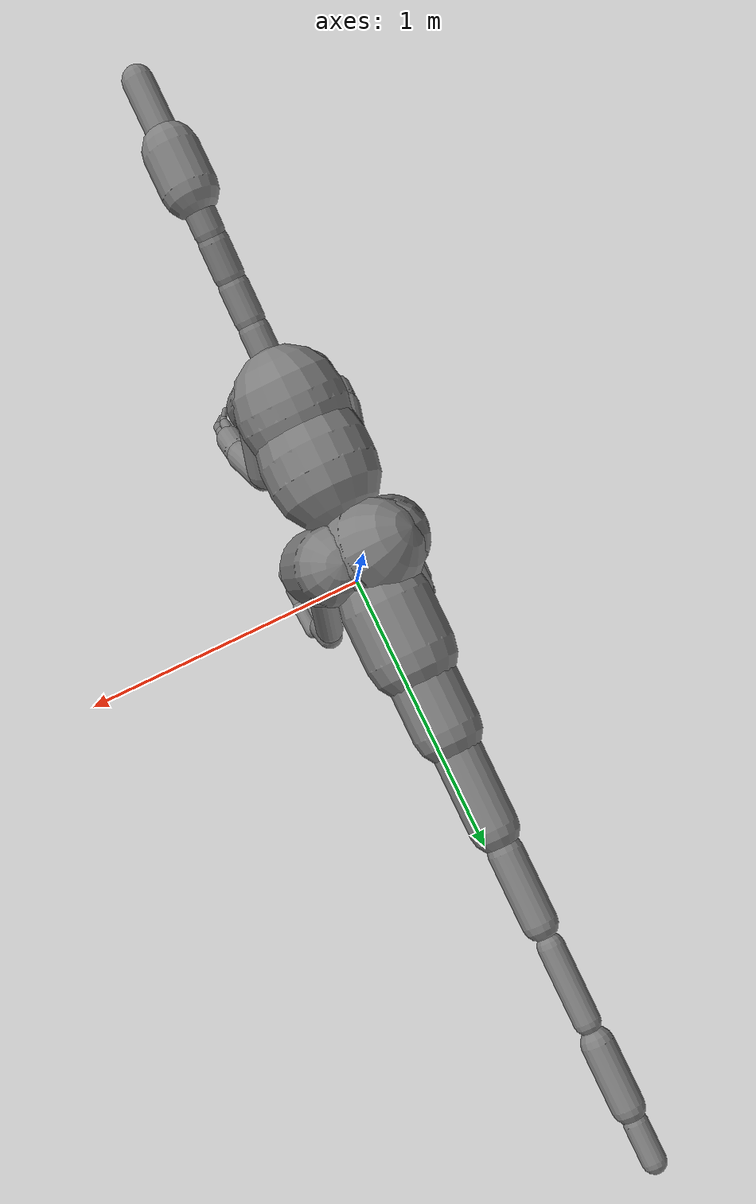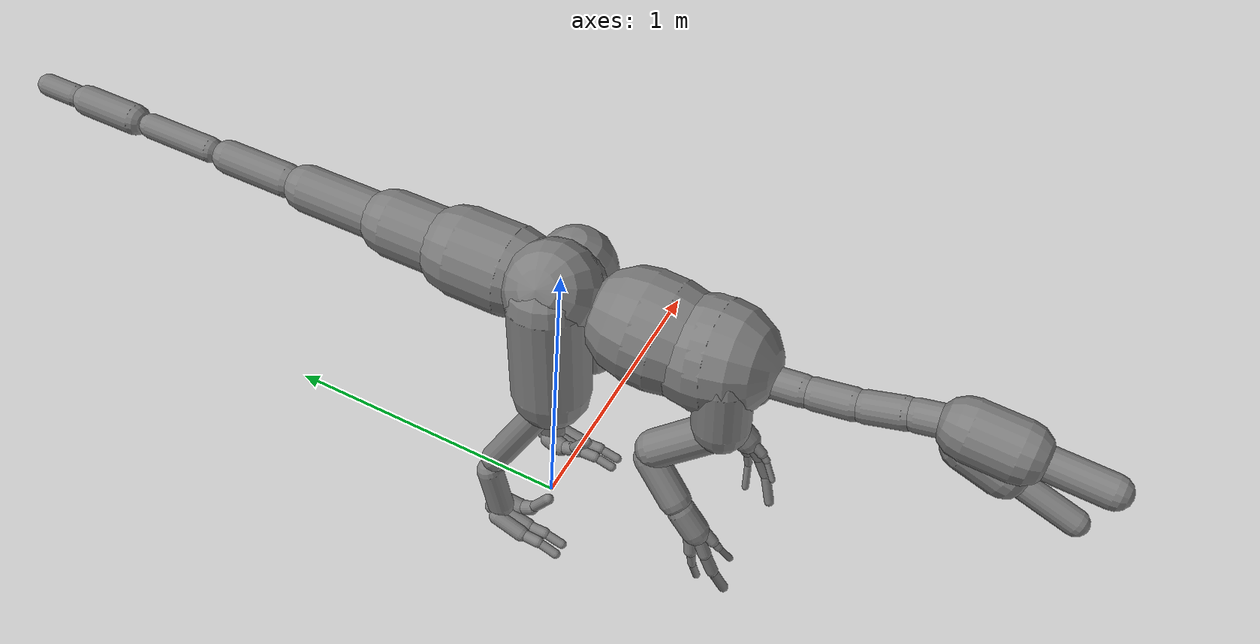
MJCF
<mujoco model="utahraptor">
  <compiler angle="radian" />
  <option timestep="0.016667" />
  <default>
    <joint limited="true" armature="0.451832" frictionloss="1.21104" />
    <geom type="capsule" density="1606.2" contype="1" conaffinity="1" friction="1.0 0.05 0.05" />
    <motor ctrllimited="true" />
  </default>
  <contact>
    <exclude body1="Neck3" body2="Jaw" />
    <exclude body1="LeftUpLeg" body2="Hips" />
    <exclude body1="LeftUpLeg" body2="Spine" />
    <exclude body1="LeftUpLeg" body2="Spine1" />
    <exclude body1="LeftUpLeg" body2="Tail" />
    <exclude body1="RightUpLeg" body2="Hips" />
    <exclude body1="RightUpLeg" body2="Spine" />
    <exclude body1="RightUpLeg" body2="Spine1" />
    <exclude body1="RightUpLeg" body2="Tail" />
    <exclude body1="LeftUpLeg" body2="RightUpLeg" />
    <exclude body1="LeftShoulder" body2="Spine" />
    <exclude body1="LeftShoulder" body2="Spine1" />
    <exclude body1="LeftShoulder" body2="Neck" />
    <exclude body1="LeftShoulder" body2="Hips" />
    <exclude body1="LeftToeBase" body2="LeftFootIndex1" />
    <exclude body1="LeftToeBase" body2="LeftFootMiddle1" />
    <exclude body1="LeftToeBase" body2="LeftFootRing1" />
    <exclude body1="LeftFootIndex1" body2="LeftFootMiddle1" />
    <exclude body1="LeftFootMiddle1" body2="LeftFootRing1" />
    <exclude body1="LeftFootIndex1" body2="LeftFootRing1" />
    <exclude body1="LeftFootIndex2" body2="LeftFootMiddle1" />
    <exclude body1="LeftFoot" body2="LeftFootIndex2" />
    <exclude body1="LeftHandMiddle2" body2="LeftHandRing2" />
    <exclude body1="LeftHandMiddle2" body2="LeftHandRing3" />
    <exclude body1="LeftHandMiddle3" body2="LeftHandRing3" />
    <exclude body1="RightShoulder" body2="Spine" />
    <exclude body1="RightShoulder" body2="Spine1" />
    <exclude body1="RightShoulder" body2="Neck" />
    <exclude body1="RightShoulder" body2="Hips" />
    <exclude body1="RightToeBase" body2="RightFootIndex1" />
    <exclude body1="RightToeBase" body2="RightFootMiddle1" />
    <exclude body1="RightToeBase" body2="RightFootRing1" />
    <exclude body1="RightFootIndex1" body2="RightFootMiddle1" />
    <exclude body1="RightFootMiddle1" body2="RightFootRing1" />
    <exclude body1="RightFootIndex1" body2="RightFootRing1" />
    <exclude body1="RightFootIndex2" body2="RightFootMiddle1" />
    <exclude body1="RightFoot" body2="RightFootIndex2" />
    <exclude body1="RightHandMiddle2" body2="RightHandRing2" />
    <exclude body1="RightHandMiddle2" body2="RightHandRing3" />
    <exclude body1="RightHandMiddle3" body2="RightHandRing3" />
    <exclude body1="LeftShoulder" body2="RightShoulder" />
  </contact>
  <worldbody>
    <body name="Hips" pos="0 0.00230387 0.953781">
      <freejoint name="root" />
      <geom name="g_Hips" fromto="-0.00961858 -0.00021923 0.00837076 -0.0400778 -0.000913486 0.0348788" size="0.149238" density="1401.8" />
      <body name="Spine" pos="-7.358e-33 -0.238799 -0.00573093">
        <joint name="Spine_x" type="hinge" axis="1 0 0" pos="0 0 0" range="-1.5107 0.6132" />
        <joint name="Spine_y" type="hinge" axis="0 1 0" pos="0 0 0" range="-0.6056 0.6056" />
        <joint name="Spine_z" type="hinge" axis="0 0 1" pos="0 0 0" range="-0.6850 0.6850" />
        <geom name="g_Spine" fromto="-9.07834e-10 -0.0242997 -0.00114617 -3.78263e-09 -0.101247 -0.00477581" size="0.167892" density="980.8" />
        <body name="Spine1" pos="-7.56524e-09 -0.202497 -0.00955142">
          <joint name="Spine1_x" type="hinge" axis="1 0 0" pos="0 0 0" range="-1.0496 0.7756" />
          <joint name="Spine1_y" type="hinge" axis="0 1 0" pos="0 0 0" range="-0.8858 0.8858" />
          <joint name="Spine1_z" type="hinge" axis="0 0 1" pos="0 0 0" range="-0.7553 0.7553" />
          <geom name="g_Spine1" fromto="-4.10572e-09 -0.014719 0.00199569 -1.71069e-08 -0.0613293 0.00831573" size="0.167892" density="984.0" />
          <body name="Neck" pos="-6.42787e-09 -0.171929 -0.0133721">
            <joint name="Neck_x" type="hinge" axis="1 0 0" pos="0 0 0" range="-1.4389 0.8324" />
            <joint name="Neck_y" type="hinge" axis="0 1 0" pos="0 0 0" range="-0.6063 0.8743" />
            <joint name="Neck_z" type="hinge" axis="0 0 1" pos="0 0 0" range="-0.8974 0.8974" />
            <geom name="g_Neck" fromto="-6.27416e-10 -0.0168707 0.00247604 -4.60101e-09 -0.123718 0.0181574" size="0.0466369" density="980.8" />
            <body name="Neck1" pos="-5.22836e-09 -0.140588 0.020634">
              <joint name="Neck1_x" type="hinge" axis="1 0 0" pos="0 0 0" range="-1.2515 0.7095" />
              <joint name="Neck1_y" type="hinge" axis="0 1 0" pos="0 0 0" range="-0.7888 0.7888" />
              <joint name="Neck1_z" type="hinge" axis="0 0 1" pos="0 0 0" range="-0.6976 0.7484" />
              <geom name="g_Neck1" fromto="-6.07548e-10 -0.0163576 0.00329648 -4.45532e-09 -0.119956 0.0241747" size="0.0466369" density="984.0" />
              <body name="Neck2" pos="-5.0629e-09 -0.136314 0.027471">
                <joint name="Neck2_x" type="hinge" axis="1 0 0" pos="0 0 0" range="-0.9083 1.7995" />
                <joint name="Neck2_y" type="hinge" axis="0 1 0" pos="0 0 0" range="-0.6279 0.5475" />
                <joint name="Neck2_z" type="hinge" axis="0 0 1" pos="0 0 0" range="-0.9775 0.9775" />
                <geom name="g_Neck2" fromto="-5.82867e-10 -0.0157452 0.00537854 -4.27437e-09 -0.115465 0.0394418" size="0.0466369" density="984.0" />
                <body name="Neck3" pos="-4.85714e-09 -0.131211 0.0448199">
                  <joint name="Neck3_x" type="hinge" axis="1 0 0" pos="0 0 0" range="-0.7080 1.5979" />
                  <joint name="Neck3_y" type="hinge" axis="0 1 0" pos="0 0 0" range="-0.7589 1.6128" />
                  <joint name="Neck3_z" type="hinge" axis="0 0 1" pos="0 0 0" range="-0.8767 0.8654" />
                  <geom name="g_Neck3" fromto="-5.51547e-05 -0.0129018 0.00342968 -0.000404473 -0.0946132 0.0251523" size="0.0466369" density="984.0" />
                  <body name="Head" pos="-0.000459616 -0.107515 0.028581">
                    <joint name="Head_x" type="hinge" axis="1 0 0" pos="0 0 0" range="-1.4312 1.7949" />
                    <joint name="Head_y" type="hinge" axis="0 1 0" pos="0 0 0" range="-1.2113 0.9948" />
                    <joint name="Head_z" type="hinge" axis="0 0 1" pos="0 0 0" range="-1.6584 1.6584" />
                    <geom name="g_Head" fromto="-0.000215648 -0.0344098 -0.00127646 -0.00102433 -0.163447 -0.0060632" size="0.0861849" density="980.8" />
                    <geom name="g_Head_muzzle" fromto="-0.00134781 -0.215061 -0.00797789 -0.00247996 -0.395712 -0.0146794" size="0.0475696" density="980.8" />
                    <body name="Jaw" pos="-0.000411635 -0.0126386 -0.0510151">
                      <joint name="Jaw_x" type="hinge" axis="1 0 0" pos="0 0 0" range="-0.5242 1.3148" />
                      <joint name="Jaw_y" type="hinge" axis="0 1 0" pos="0 0 0" range="-0.6722 0.6722" />
                      <joint name="Jaw_z" type="hinge" axis="0 0 1" pos="0 0 0" range="-0.6218 0.6218" />
                      <geom name="g_Jaw" fromto="-0.000242154 -0.0286567 -0.0105759 -0.00115023 -0.13612 -0.0502355" size="0.068463" density="980.8" />
                      <geom name="g_Jaw_tip" fromto="-0.00151346 -0.179104 -0.0660994 -0.0028453 -0.336717 -0.124267" size="0.0369365" density="980.8" />
                    </body>
                  </body>
                </body>
              </body>
            </body>
          </body>
          <body name="LeftShoulder" pos="0.0748802 -0.0980233 0.0316328">
            <joint name="LeftShoulder_x" type="hinge" axis="1 0 0" pos="0 0 0" range="-1.0879 1.3179" />
            <joint name="LeftShoulder_y" type="hinge" axis="0 1 0" pos="0 0 0" range="-0.9148 0.7142" />
            <joint name="LeftShoulder_z" type="hinge" axis="0 0 1" pos="0 0 0" range="-0.6609 0.5530" />
            <geom name="g_LeftShoulder" fromto="0.00229267 -0.00259469 -0.0242662 0.0168136 -0.0190279 -0.177959" size="0.0839464" density="1401.8" />
            <body name="LeftArm" pos="0.0191062 -0.0216208 -0.202218">
              <joint name="LeftArm_x" type="hinge" axis="1 0 0" pos="0 0 0" range="-2.1802 2.3641" />
              <joint name="LeftArm_y" type="hinge" axis="0 1 0" pos="0 0 0" range="-1.3899 1.6724" />
              <joint name="LeftArm_z" type="hinge" axis="0 0 1" pos="0 0 0" range="-2.2335 1.9332" />
              <geom name="g_LeftArm" fromto="0.00597829 0.0228054 -0.0192368 0.0438405 0.16724 -0.141069" size="0.0578298" density="1401.8" />
              <body name="LeftForeArm" pos="0.0498194 0.190036 -0.160306">
                <joint name="LeftForeArm_x" type="hinge" axis="1 0 0" pos="0 0 0" range="-1.2770 1.8986" />
                <joint name="LeftForeArm_y" type="hinge" axis="0 1 0" pos="0 0 0" range="-1.2931 1.1387" />
                <joint name="LeftForeArm_z" type="hinge" axis="0 0 1" pos="0 0 0" range="-2.5874 1.4681" />
                <geom name="g_LeftForeArm" fromto="0.00501105 -0.016188 -0.0153844 0.036748 -0.118713 -0.112821" size="0.0485024" density="1401.8" />
                <body name="LeftHand" pos="0.0417587 -0.1349 -0.128203">
                  <joint name="LeftHand_x" type="hinge" axis="1 0 0" pos="0 0 0" range="-3.1067 2.0532" />
                  <joint name="LeftHand_y" type="hinge" axis="0 1 0" pos="0 0 0" range="-1.6520 1.3623" />
                  <joint name="LeftHand_z" type="hinge" axis="0 0 1" pos="0 0 0" range="-3.1067 2.6298" />
                  <geom name="g_LeftHand" fromto="0.000866868 -0.00849016 -0.00916657 0.00635698 -0.0622603 -0.0672206" size="0.042906" density="1401.8" />
                  <body name="LeftHandMiddle1" pos="0.010012 -0.0736247 -0.0789787">
                    <joint name="LeftHandMiddle1_x" type="hinge" axis="1 0 0" pos="0 0 0" range="-1.0460 1.4460" />
                    <joint name="LeftHandMiddle1_y" type="hinge" axis="0 1 0" pos="0 0 0" range="-1.2524 1.1571" />
                    <joint name="LeftHandMiddle1_z" type="hinge" axis="0 0 1" pos="0 0 0" range="-2.0143 1.1108" />
                    <geom name="g_LeftHandMiddle1" fromto="0 0 0 0.00875747 -0.031825 -0.060087" size="0.0199793" density="1310.9" />
                    <body name="LeftHandMiddle2" pos="0.00875747 -0.031825 -0.060087">
                      <joint name="LeftHandMiddle2_x" type="hinge" axis="1 0 0" pos="0 0 0" range="-0.2083 0.6642" />
                      <joint name="LeftHandMiddle2_y" type="hinge" axis="0 1 0" pos="0 0 0" range="-0.2988 0.9734" />
                      <joint name="LeftHandMiddle2_z" type="hinge" axis="0 0 1" pos="0 0 0" range="-0.8469 0.2330" />
                      <geom name="g_LeftHandMiddle2" fromto="0 0 0 -0.000313288 -0.0311217 -0.0649297" size="0.0185801" density="1310.9" />
                      <body name="LeftHandMiddle3" pos="-0.000313288 -0.0311217 -0.0649297">
                        <joint name="LeftHandMiddle3_x" type="hinge" axis="1 0 0" pos="0 0 0" range="-0.2106 1.5778" />
                        <joint name="LeftHandMiddle3_y" type="hinge" axis="0 1 0" pos="0 0 0" range="-0.4369 1.1254" />
                        <joint name="LeftHandMiddle3_z" type="hinge" axis="0 0 1" pos="0 0 0" range="-1.8404 0.2958" />
                        <geom name="g_LeftHandMiddle3" fromto="-0.00361746 -0.0055003 -0.0138285 -0.0242752 -0.0369102 -0.0927968" size="0.0153155" density="1310.9" />
                      </body>
                    </body>
                  </body>
                  <body name="LeftHandRing1" pos="0.0139138 -0.051114 -0.0874758">
                    <joint name="LeftHandRing1_x" type="hinge" axis="1 0 0" pos="0 0 0" range="-1.0420 0.9748" />
                    <joint name="LeftHandRing1_y" type="hinge" axis="0 1 0" pos="0 0 0" range="-0.8982 1.2482" />
                    <joint name="LeftHandRing1_z" type="hinge" axis="0 0 1" pos="0 0 0" range="-1.4353 1.0217" />
                    <geom name="g_LeftHandRing1" fromto="0 0 0 0.0124065 -0.0128955 -0.0550782" size="0.020371" density="1310.9" />
                    <body name="LeftHandRing2" pos="0.0124065 -0.0128955 -0.0550782">
                      <joint name="LeftHandRing2_x" type="hinge" axis="1 0 0" pos="0 0 0" range="-0.2026 0.6074" />
                      <joint name="LeftHandRing2_y" type="hinge" axis="0 1 0" pos="0 0 0" range="-0.3775 1.2035" />
                      <joint name="LeftHandRing2_z" type="hinge" axis="0 0 1" pos="0 0 0" range="-0.6580 0.2258" />
                      <geom name="g_LeftHandRing2" fromto="0 0 0 0.000789059 -0.0114152 -0.0571619" size="0.012536" density="1310.9" />
                      <body name="LeftHandRing3" pos="0.000789059 -0.0114152 -0.0571619">
                        <joint name="LeftHandRing3_x" type="hinge" axis="1 0 0" pos="0 0 0" range="-0.1917 2.2210" />
                        <joint name="LeftHandRing3_y" type="hinge" axis="0 1 0" pos="0 0 0" range="-0.3447 1.4237" />
                        <joint name="LeftHandRing3_z" type="hinge" axis="0 0 1" pos="0 0 0" range="-2.2882 0.2091" />
                        <geom name="g_LeftHandRing3" fromto="-0.00311512 -0.00151111 -0.0106439 -0.0250992 -0.0121754 -0.0857602" size="0.0111929" density="1310.9" />
                      </body>
                    </body>
                  </body>
                  <body name="LeftHandIndex1" pos="-0.00225405 -0.0875132 -0.0627098">
                    <joint name="LeftHandIndex1_x" type="hinge" axis="1 0 0" pos="0 0 0" range="-1.0547 0.9737" />
                    <joint name="LeftHandIndex1_y" type="hinge" axis="0 1 0" pos="0 0 0" range="-0.5403 1.1295" />
                    <joint name="LeftHandIndex1_z" type="hinge" axis="0 0 1" pos="0 0 0" range="-1.0749 0.9371" />
                    <geom name="g_LeftHandIndex1" fromto="0 0 0 0.00100889 -0.0305136 -0.0288962" size="0.0169012" density="1310.9" />
                    <body name="LeftHandIndex2" pos="0.00100889 -0.0305136 -0.0288962">
                      <joint name="LeftHandIndex2_x" type="hinge" axis="1 0 0" pos="0 0 0" range="-0.2408 0.5086" />
                      <joint name="LeftHandIndex2_y" type="hinge" axis="0 1 0" pos="0 0 0" range="-0.2930 0.4743" />
                      <joint name="LeftHandIndex2_z" type="hinge" axis="0 0 1" pos="0 0 0" range="-0.6024 0.2600" />
                      <geom name="g_LeftHandIndex2" fromto="0 0 0 -0.00256746 -0.0181039 -0.0197069" size="0.0121816" density="1310.9" />
                      <body name="LeftHandIndex3" pos="-0.00256746 -0.0181039 -0.0197069">
                        <joint name="LeftHandIndex3_x" type="hinge" axis="1 0 0" pos="0 0 0" range="-0.2702 1.6488" />
                        <joint name="LeftHandIndex3_y" type="hinge" axis="0 1 0" pos="0 0 0" range="-0.3272 0.5907" />
                        <joint name="LeftHandIndex3_z" type="hinge" axis="0 0 1" pos="0 0 0" range="-1.9297 0.3181" />
                        <geom name="g_LeftHandIndex3" fromto="-0.00267814 -0.00509958 -0.00785151 -0.0184275 -0.0350886 -0.054024" size="0.00973778" density="1310.9" />
                      </body>
                    </body>
                  </body>
                </body>
              </body>
            </body>
          </body>
          <body name="RightShoulder" pos="-0.0748802 -0.0980233 0.0316328">
            <joint name="RightShoulder_x" type="hinge" axis="1 0 0" pos="0 0 0" range="-1.0879 1.3179" />
            <joint name="RightShoulder_y" type="hinge" axis="0 1 0" pos="0 0 0" range="-0.7142 1.0588" />
            <joint name="RightShoulder_z" type="hinge" axis="0 0 1" pos="0 0 0" range="-0.5530 0.6609" />
            <geom name="g_RightShoulder" fromto="-0.00229267 -0.0025945 -0.0242662 -0.0168136 -0.0190259 -0.177959" size="0.0839464" density="1401.8" />
            <body name="RightArm" pos="-0.0191062 -0.0216208 -0.202218">
              <joint name="RightArm_x" type="hinge" axis="1 0 0" pos="0 0 0" range="-2.1802 2.3641" />
              <joint name="RightArm_y" type="hinge" axis="0 1 0" pos="0 0 0" range="-1.6724 1.3899" />
              <joint name="RightArm_z" type="hinge" axis="0 0 1" pos="0 0 0" range="-1.9332 2.2335" />
              <geom name="g_RightArm" fromto="-0.00597829 0.0228054 -0.0192368 -0.0438405 0.167237 -0.141069" size="0.0578298" density="1401.8" />
              <body name="RightForeArm" pos="-0.0498175 0.190036 -0.160306">
                <joint name="RightForeArm_x" type="hinge" axis="1 0 0" pos="0 0 0" range="-1.2770 1.8986" />
                <joint name="RightForeArm_y" type="hinge" axis="0 1 0" pos="0 0 0" range="-1.1387 1.2931" />
                <joint name="RightForeArm_z" type="hinge" axis="0 0 1" pos="0 0 0" range="-1.4115 2.5874" />
                <geom name="g_RightForeArm" fromto="-0.00501105 -0.016188 -0.0153844 -0.036748 -0.118711 -0.112818" size="0.0485024" density="1401.8" />
                <body name="RightHand" pos="-0.0417587 -0.1349 -0.128203">
                  <joint name="RightHand_x" type="hinge" axis="1 0 0" pos="0 0 0" range="-3.1067 2.0532" />
                  <joint name="RightHand_y" type="hinge" axis="0 1 0" pos="0 0 0" range="-1.3623 1.6520" />
                  <joint name="RightHand_z" type="hinge" axis="0 0 1" pos="0 0 0" range="-2.6298 3.1067" />
                  <geom name="g_RightHand" fromto="-0.000866905 -0.00849016 -0.00916657 -0.00635717 -0.0622603 -0.0672224" size="0.042906" density="1401.8" />
                  <body name="RightHandMiddle1" pos="-0.010012 -0.0736247 -0.0789787">
                    <joint name="RightHandMiddle1_x" type="hinge" axis="1 0 0" pos="0 0 0" range="-1.0460 1.4460" />
                    <joint name="RightHandMiddle1_y" type="hinge" axis="0 1 0" pos="0 0 0" range="-1.1571 1.2524" />
                    <joint name="RightHandMiddle1_z" type="hinge" axis="0 0 1" pos="0 0 0" range="-1.1108 2.0143" />
                    <geom name="g_RightHandMiddle1" fromto="0 0 0 -0.00875784 -0.031825 -0.0600851" size="0.0199793" density="1310.9" />
                    <body name="RightHandMiddle2" pos="-0.00875784 -0.031825 -0.0600851">
                      <joint name="RightHandMiddle2_x" type="hinge" axis="1 0 0" pos="0 0 0" range="-0.2083 0.6642" />
                      <joint name="RightHandMiddle2_y" type="hinge" axis="0 1 0" pos="0 0 0" range="-0.9734 0.2988" />
                      <joint name="RightHandMiddle2_z" type="hinge" axis="0 0 1" pos="0 0 0" range="-0.2330 0.8469" />
                      <geom name="g_RightHandMiddle2" fromto="0 0 0 0.000313288 -0.0311217 -0.0649297" size="0.0185801" density="1310.9" />
                      <body name="RightHandMiddle3" pos="0.000313288 -0.0311217 -0.0649297">
                        <joint name="RightHandMiddle3_x" type="hinge" axis="1 0 0" pos="0 0 0" range="-0.2106 1.5778" />
                        <joint name="RightHandMiddle3_y" type="hinge" axis="0 1 0" pos="0 0 0" range="-1.1254 0.4369" />
                        <joint name="RightHandMiddle3_z" type="hinge" axis="0 0 1" pos="0 0 0" range="-0.2958 1.8404" />
                        <geom name="g_RightHandMiddle3" fromto="0.00361749 -0.00550039 -0.0138284 0.0242756 -0.036911 -0.0927975" size="0.0153155" density="1310.9" />
                      </body>
                    </body>
                  </body>
                  <body name="RightHandRing1" pos="-0.0139144 -0.051114 -0.0874758">
                    <joint name="RightHandRing1_x" type="hinge" axis="1 0 0" pos="0 0 0" range="-1.0420 0.9748" />
                    <joint name="RightHandRing1_y" type="hinge" axis="0 1 0" pos="0 0 0" range="-1.2482 0.8982" />
                    <joint name="RightHandRing1_z" type="hinge" axis="0 0 1" pos="0 0 0" range="-1.0217 1.4353" />
                    <geom name="g_RightHandRing1" fromto="0 0 0 -0.012405 -0.012896 -0.0550782" size="0.0200725" density="1310.9" />
                    <body name="RightHandRing2" pos="-0.012405 -0.012896 -0.0550782">
                      <joint name="RightHandRing2_x" type="hinge" axis="1 0 0" pos="0 0 0" range="-0.2026 0.6074" />
                      <joint name="RightHandRing2_y" type="hinge" axis="0 1 0" pos="0 0 0" range="-1.2035 0.3760" />
                      <joint name="RightHandRing2_z" type="hinge" axis="0 0 1" pos="0 0 0" range="-0.2258 0.6580" />
                      <geom name="g_RightHandRing2" fromto="0 0 0 -0.000789283 -0.011415 -0.0571619" size="0.012536" density="1310.9" />
                      <body name="RightHandRing3" pos="-0.000789283 -0.011415 -0.0571619">
                        <joint name="RightHandRing3_x" type="hinge" axis="1 0 0" pos="0 0 0" range="-0.1917 2.2210" />
                        <joint name="RightHandRing3_y" type="hinge" axis="0 1 0" pos="0 0 0" range="-1.4237 0.3447" />
                        <joint name="RightHandRing3_z" type="hinge" axis="0 0 1" pos="0 0 0" range="-0.2091 2.2882" />
                        <geom name="g_RightHandRing3" fromto="0.00311509 -0.00151111 -0.0106439 0.0250989 -0.0121753 -0.0857598" size="0.0111929" density="1310.9" />
                      </body>
                    </body>
                  </body>
                  <body name="RightHandIndex1" pos="0.00225387 -0.0875132 -0.0627098">
                    <joint name="RightHandIndex1_x" type="hinge" axis="1 0 0" pos="0 0 0" range="-1.0547 0.9737" />
                    <joint name="RightHandIndex1_y" type="hinge" axis="0 1 0" pos="0 0 0" range="-1.1295 0.5403" />
                    <joint name="RightHandIndex1_z" type="hinge" axis="0 0 1" pos="0 0 0" range="-0.9371 1.0749" />
                    <geom name="g_RightHandIndex1" fromto="0 0 0 -0.00100887 -0.0305136 -0.0288962" size="0.0169012" density="1310.9" />
                    <body name="RightHandIndex2" pos="-0.00100887 -0.0305136 -0.0288962">
                      <joint name="RightHandIndex2_x" type="hinge" axis="1 0 0" pos="0 0 0" range="-0.2408 0.5086" />
                      <joint name="RightHandIndex2_y" type="hinge" axis="0 1 0" pos="0 0 0" range="-0.4743 0.2930" />
                      <joint name="RightHandIndex2_z" type="hinge" axis="0 0 1" pos="0 0 0" range="-0.2600 0.6024" />
                      <geom name="g_RightHandIndex2" fromto="0 0 0 0.00256764 -0.0181046 -0.019705" size="0.0121816" density="1310.9" />
                      <body name="RightHandIndex3" pos="0.00256764 -0.0181046 -0.019705">
                        <joint name="RightHandIndex3_x" type="hinge" axis="1 0 0" pos="0 0 0" range="-0.2702 1.6488" />
                        <joint name="RightHandIndex3_y" type="hinge" axis="0 1 0" pos="0 0 0" range="-0.5907 0.3272" />
                        <joint name="RightHandIndex3_z" type="hinge" axis="0 0 1" pos="0 0 0" range="-0.3181 1.9297" />
                        <geom name="g_RightHandIndex3" fromto="0.00267814 -0.00509952 -0.00785156 0.0184276 -0.0350886 -0.0540247" size="0.00973778" density="1310.9" />
                      </body>
                    </body>
                  </body>
                </body>
              </body>
            </body>
          </body>
        </body>
      </body>
      <body name="Tail" pos="0 0.123155 -0.00153118">
        <joint name="Tail_x" type="hinge" axis="1 0 0" pos="0 0 0" range="-0.6016 1.2474" />
        <joint name="Tail_y" type="hinge" axis="0 1 0" pos="0 0 0" range="-1.1216 1.1216" />
        <joint name="Tail_z" type="hinge" axis="0 0 1" pos="0 0 0" range="-0.9570 0.9570" />
        <geom name="g_Tail" fromto="-8.46086e-10 0.0261894 -0.000110227 -6.20457e-09 0.19205 -0.00080833" size="0.138045" density="1401.8" />
        <body name="Tail1" pos="-7.05075e-09 0.218242 -0.00091856">
          <joint name="Tail1_x" type="hinge" axis="1 0 0" pos="0 0 0" range="-0.4449 0.8159" />
          <joint name="Tail1_y" type="hinge" axis="0 1 0" pos="0 0 0" range="-0.8186 0.8186" />
          <joint name="Tail1_z" type="hinge" axis="0 0 1" pos="0 0 0" range="-0.6087 0.6087" />
          <geom name="g_Tail1" fromto="-9.43949e-10 0.029217 -0.000123097 -6.92222e-09 0.214269 -0.000902722" size="0.104467" density="1401.8" />
          <body name="Tail2" pos="-7.86615e-09 0.243482 -0.00102582">
            <joint name="Tail2_x" type="hinge" axis="1 0 0" pos="0 0 0" range="-0.4246 0.4704" />
            <joint name="Tail2_y" type="hinge" axis="0 1 0" pos="0 0 0" range="-0.4631 0.4631" />
            <joint name="Tail2_z" type="hinge" axis="0 0 1" pos="0 0 0" range="-0.4904 0.4904" />
            <geom name="g_Tail2" fromto="-1.25101e-09 0.0387217 -0.000162973 -9.17403e-09 0.283963 -0.00119513" size="0.074619" density="1401.8" />
            <body name="Tail3" pos="-1.0425e-08 0.32269 -0.00135811">
              <joint name="Tail3_x" type="hinge" axis="1 0 0" pos="0 0 0" range="-0.4323 0.4590" />
              <joint name="Tail3_y" type="hinge" axis="0 1 0" pos="0 0 0" range="-0.8782 0.8782" />
              <joint name="Tail3_z" type="hinge" axis="0 0 1" pos="0 0 0" range="-0.4828 0.4828" />
              <geom name="g_Tail3" fromto="-1.14746e-09 0.0355168 -0.000149568 -8.4146e-09 0.260458 -0.00109683" size="0.0540988" density="1401.8" />
              <body name="Tail4" pos="-9.56206e-09 0.295976 -0.0012464">
                <joint name="Tail4_x" type="hinge" axis="1 0 0" pos="0 0 0" range="-0.4298 0.4572" />
                <joint name="Tail4_y" type="hinge" axis="0 1 0" pos="0 0 0" range="-0.8782 0.8782" />
                <joint name="Tail4_z" type="hinge" axis="0 0 1" pos="0 0 0" range="-0.4828 0.4828" />
                <geom name="g_Tail4" fromto="-1.20391e-09 0.0372648 -0.000156934 -8.82855e-09 0.273274 -0.00115083" size="0.0410404" density="1401.8" />
                <body name="Tail5" pos="-1.00325e-08 0.310527 -0.00130777">
                  <joint name="Tail5_x" type="hinge" axis="1 0 0" pos="0 0 0" range="-0.2446 0.1745" />
                  <joint name="Tail5_y" type="hinge" axis="0 1 0" pos="0 0 0" range="-0.1745 0.1745" />
                  <joint name="Tail5_z" type="hinge" axis="0 0 1" pos="0 0 0" range="-0.1745 0.1745" />
                  <geom name="g_Tail5" fromto="-1.0059e-09 0.0311348 -0.000131085 -7.37665e-09 0.228334 -0.000961298" size="0.0503678" density="1401.8" />
                  <body name="Tail6" pos="-8.38251e-09 0.259469 -0.00109239">
                    <joint name="Tail6_x" type="hinge" axis="1 0 0" pos="0 0 0" range="-1.0469 1.0288" />
                    <joint name="Tail6_y" type="hinge" axis="0 1 0" pos="0 0 0" range="-1.2793 1.2793" />
                    <joint name="Tail6_z" type="hinge" axis="0 0 1" pos="0 0 0" range="-1.2112 0.8699" />
                    <geom name="g_Tail6" fromto="-6.03537e-10 0.0186808 -7.86521e-05 -4.42603e-09 0.136997 -0.000576768" size="0.0373095" density="1401.8" />
                  </body>
                </body>
              </body>
            </body>
          </body>
        </body>
      </body>
      <body name="LeftUpLeg" pos="0.0801558 -0.00182697 0.0697576">
        <joint name="LeftUpLeg_x" type="hinge" axis="1 0 0" pos="0 0 0" range="-1.7984 1.1466" />
        <joint name="LeftUpLeg_y" type="hinge" axis="0 1 0" pos="0 0 0" range="-0.9443 0.6051" />
        <joint name="LeftUpLeg_z" type="hinge" axis="0 0 1" pos="0 0 0" range="-1.0967 0.8135" />
        <geom name="g_LeftUpLeg" fromto="0.00558188 -0.00631948 -0.0478065 0.0409341 -0.0463421 -0.350578" size="0.121256" density="1401.8" />
        <body name="LeftLeg" pos="0.0465156 -0.0526624 -0.398391">
          <joint name="LeftLeg_x" type="hinge" axis="1 0 0" pos="0 0 0" range="-0.7311 2.4105" />
          <joint name="LeftLeg_y" type="hinge" axis="0 1 0" pos="0 0 0" range="-0.6966 1.3946" />
          <joint name="LeftLeg_z" type="hinge" axis="0 0 1" pos="0 0 0" range="-1.4227 0.8179" />
          <geom name="g_LeftLeg" fromto="0.00503715 0.0235479 -0.0470082 0.0369402 0.172687 -0.34474" size="0.0447714" density="1401.8" />
          <body name="LeftFoot" pos="0.041977 0.196229 -0.391732">
            <joint name="LeftFoot_x" type="hinge" axis="1 0 0" pos="0 0 0" range="-2.0747 0.9271" />
            <joint name="LeftFoot_y" type="hinge" axis="0 1 0" pos="0 0 0" range="-1.6183 1.4881" />
            <joint name="LeftFoot_z" type="hinge" axis="0 0 1" pos="0 0 0" range="-1.8977 0.8570" />
            <geom name="g_LeftFoot" fromto="0.00115246 -0.00703994 -0.0229285 0.00845135 -0.0516252 -0.168141" size="0.042906" density="1401.8" />
            <body name="LeftToeBase" pos="0.00858921 -0.0667187 -0.198076">
              <joint name="LeftToeBase_x" type="hinge" axis="1 0 0" pos="0 0 0" range="-2.7852 2.5440" />
              <joint name="LeftToeBase_y" type="hinge" axis="0 1 0" pos="0 0 0" range="-1.6339 1.7271" />
              <joint name="LeftToeBase_z" type="hinge" axis="0 0 1" pos="0 0 0" range="-1.8521 3.1067" />
              <geom name="g_LeftToeBase" fromto="0 0.0150617 0 0 0.0447714 0" size="0.0261166" density="1401.8" />
            </body>
            <body name="LeftFootIndex1" pos="-0.0204101 -0.0547349 -0.181805">
              <joint name="LeftFootIndex1_x" type="hinge" axis="1 0 0" pos="0 0 0" range="-1.5186 2.6109" />
              <joint name="LeftFootIndex1_y" type="hinge" axis="0 1 0" pos="0 0 0" range="-1.2260 1.2952" />
              <joint name="LeftFootIndex1_z" type="hinge" axis="0 0 1" pos="0 0 0" range="-1.7670 2.1674" />
              <geom name="g_LeftFootIndex1" fromto="0 0 0 -0.00521139 -0.0480882 -0.00851273" size="0.0312094" density="1401.8" />
              <body name="LeftFootIndex2" pos="-0.00521139 -0.0480882 -0.00851273">
                <joint name="LeftFootIndex2_x" type="hinge" axis="1 0 0" pos="0 0 0" range="-0.0873 1.5936" />
                <joint name="LeftFootIndex2_y" type="hinge" axis="0 1 0" pos="0 0 0" range="-0.2224 0.2088" />
                <joint name="LeftFootIndex2_z" type="hinge" axis="0 0 1" pos="0 0 0" range="-0.1410 0.2880" />
                <geom name="g_LeftFootIndex2" fromto="0 0 0 -0.00473346 -0.0414304 0.0205501" size="0.0235797" density="1401.8" />
                <body name="LeftFootIndex3" pos="-0.00473346 -0.0414304 0.0205501">
                  <joint name="LeftFootIndex3_x" type="hinge" axis="1 0 0" pos="0 0 0" range="-0.8183 1.6514" />
                  <joint name="LeftFootIndex3_y" type="hinge" axis="0 1 0" pos="0 0 0" range="-0.2768 0.2332" />
                  <joint name="LeftFootIndex3_z" type="hinge" axis="0 0 1" pos="0 0 0" range="-0.2061 0.2897" />
                  <geom name="g_LeftFootIndex3" fromto="-0.00116532 -0.0102274 0.0144261 -0.0063262 -0.0555214 0.0783149" size="0.017722" density="1401.8" />
                </body>
              </body>
            </body>
            <body name="LeftFootMiddle1" pos="0.00911901 -0.057729 -0.1922">
              <joint name="LeftFootMiddle1_x" type="hinge" axis="1 0 0" pos="0 0 0" range="-1.5603 3.1067" />
              <joint name="LeftFootMiddle1_y" type="hinge" axis="0 1 0" pos="0 0 0" range="-1.4467 1.6240" />
              <joint name="LeftFootMiddle1_z" type="hinge" axis="0 0 1" pos="0 0 0" range="-2.8446 1.2173" />
              <geom name="g_LeftFootMiddle1" fromto="0 0 0 -6.52861e-09 -0.0934584 -0.024212" size="0.0249414" density="1401.8" />
              <body name="LeftFootMiddle2" pos="-6.52861e-09 -0.0934584 -0.024212">
                <joint name="LeftFootMiddle2_x" type="hinge" axis="1 0 0" pos="0 0 0" range="-0.0873 1.6122" />
                <joint name="LeftFootMiddle2_y" type="hinge" axis="0 1 0" pos="0 0 0" range="-0.1774 0.1950" />
                <joint name="LeftFootMiddle2_z" type="hinge" axis="0 0 1" pos="0 0 0" range="-0.1691 0.2039" />
                <geom name="g_LeftFootMiddle2" fromto="0 0 0 -2.72397e-09 -0.0639205 0.00338976" size="0.0187107" density="1401.8" />
                <body name="LeftFootMiddle3" pos="-2.72397e-09 -0.0639205 0.00338976">
                  <joint name="LeftFootMiddle3_x" type="hinge" axis="1 0 0" pos="0 0 0" range="-0.5742 1.5203" />
                  <joint name="LeftFootMiddle3_y" type="hinge" axis="0 1 0" pos="0 0 0" range="-0.1803 0.1967" />
                  <joint name="LeftFootMiddle3_z" type="hinge" axis="0 0 1" pos="0 0 0" range="-0.1841 0.2039" />
                  <geom name="g_LeftFootMiddle3" fromto="0.000117173 -0.014632 -0.00337692 0.000509677 -0.0636462 -0.014689" size="0.015017" density="1401.8" />
                </body>
              </body>
            </body>
            <body name="LeftFootRing1" pos="0.0411169 -0.0554792 -0.1922">
              <joint name="LeftFootRing1_x" type="hinge" axis="1 0 0" pos="0 0 0" range="-1.6908 3.1067" />
              <joint name="LeftFootRing1_y" type="hinge" axis="0 1 0" pos="0 0 0" range="-1.2814 1.6088" />
              <joint name="LeftFootRing1_z" type="hinge" axis="0 0 1" pos="0 0 0" range="-2.5722 1.5796" />
              <geom name="g_LeftFootRing1" fromto="0 0 0 0.00469485 -0.0933353 -0.0242344" size="0.0259674" density="1401.8" />
              <body name="LeftFootRing2" pos="0.00469485 -0.0933353 -0.0242344">
                <joint name="LeftFootRing2_x" type="hinge" axis="1 0 0" pos="0 0 0" range="-0.0873 1.5876" />
                <joint name="LeftFootRing2_y" type="hinge" axis="0 1 0" pos="0 0 0" range="-0.1809 0.2757" />
                <joint name="LeftFootRing2_z" type="hinge" axis="0 0 1" pos="0 0 0" range="-0.1904 0.2708" />
                <geom name="g_LeftFootRing2" fromto="0 0 0 0.00302244 -0.0638497 0.00337296" size="0.0191398" density="1401.8" />
                <body name="LeftFootRing3" pos="0.00302244 -0.0638497 0.00337296">
                  <joint name="LeftFootRing3_x" type="hinge" axis="1 0 0" pos="0 0 0" range="-0.6197 1.4533" />
                  <joint name="LeftFootRing3_y" type="hinge" axis="0 1 0" pos="0 0 0" range="-0.1943 0.2410" />
                  <joint name="LeftFootRing3_z" type="hinge" axis="0 0 1" pos="0 0 0" range="-0.2271 0.1871" />
                  <geom name="g_LeftFootRing3" fromto="0.000577415 -0.0145128 -0.00366581 0.00261713 -0.065779 -0.0166152" size="0.0149798" density="1401.8" />
                </body>
              </body>
            </body>
          </body>
        </body>
      </body>
      <body name="RightUpLeg" pos="-0.0801558 -0.00182695 0.0697558">
        <joint name="RightUpLeg_x" type="hinge" axis="1 0 0" pos="0 0 0" range="-1.7984 1.2450" />
        <joint name="RightUpLeg_y" type="hinge" axis="0 1 0" pos="0 0 0" range="-0.6051 0.9443" />
        <joint name="RightUpLeg_z" type="hinge" axis="0 0 1" pos="0 0 0" range="-0.8135 1.0967" />
        <geom name="g_RightUpLeg" fromto="-0.00558188 -0.00631948 -0.0478065 -0.0409341 -0.0463421 -0.350578" size="0.121256" density="1401.8" />
        <body name="RightLeg" pos="-0.0465156 -0.0526624 -0.398391">
          <joint name="RightLeg_x" type="hinge" axis="1 0 0" pos="0 0 0" range="-0.7311 2.4105" />
          <joint name="RightLeg_y" type="hinge" axis="0 1 0" pos="0 0 0" range="-1.3946 0.6966" />
          <joint name="RightLeg_z" type="hinge" axis="0 0 1" pos="0 0 0" range="-0.8179 1.4227" />
          <geom name="g_RightLeg" fromto="-0.00503715 0.0235479 -0.0470082 -0.0369402 0.172687 -0.34474" size="0.0447714" density="1401.8" />
          <body name="RightFoot" pos="-0.041977 0.196229 -0.391732">
            <joint name="RightFoot_x" type="hinge" axis="1 0 0" pos="0 0 0" range="-2.0747 0.9271" />
            <joint name="RightFoot_y" type="hinge" axis="0 1 0" pos="0 0 0" range="-1.4881 1.6183" />
            <joint name="RightFoot_z" type="hinge" axis="0 0 1" pos="0 0 0" range="-0.8570 1.8977" />
            <geom name="g_RightFoot" fromto="-0.00115246 -0.00703994 -0.0229285 -0.00845135 -0.0516252 -0.168141" size="0.042906" density="1401.8" />
            <body name="RightToeBase" pos="-0.00858921 -0.0667187 -0.198076">
              <joint name="RightToeBase_x" type="hinge" axis="1 0 0" pos="0 0 0" range="-2.7852 2.5440" />
              <joint name="RightToeBase_y" type="hinge" axis="0 1 0" pos="0 0 0" range="-1.7271 1.6339" />
              <joint name="RightToeBase_z" type="hinge" axis="0 0 1" pos="0 0 0" range="-3.1067 1.8521" />
              <geom name="g_RightToeBase" fromto="0 0.0150617 0 0 0.0447714 0" size="0.0261166" density="1401.8" />
            </body>
            <body name="RightFootIndex1" pos="0.0204101 -0.0547349 -0.181805">
              <joint name="RightFootIndex1_x" type="hinge" axis="1 0 0" pos="0 0 0" range="-1.5186 2.6109" />
              <joint name="RightFootIndex1_y" type="hinge" axis="0 1 0" pos="0 0 0" range="-1.2952 1.2260" />
              <joint name="RightFootIndex1_z" type="hinge" axis="0 0 1" pos="0 0 0" range="-2.1674 1.7670" />
              <geom name="g_RightFootIndex1" fromto="0 0 0 0.00521139 -0.0480882 -0.00851273" size="0.0294558" density="1401.8" />
              <body name="RightFootIndex2" pos="0.00521139 -0.0480882 -0.00851273">
                <joint name="RightFootIndex2_x" type="hinge" axis="1 0 0" pos="0 0 0" range="-0.0873 1.5936" />
                <joint name="RightFootIndex2_y" type="hinge" axis="0 1 0" pos="0 0 0" range="-0.1698 0.2224" />
                <joint name="RightFootIndex2_z" type="hinge" axis="0 0 1" pos="0 0 0" range="-0.2880 0.1193" />
                <geom name="g_RightFootIndex2" fromto="0 0 0 0.00473365 -0.0414304 0.0205519" size="0.0235797" density="1401.8" />
                <body name="RightFootIndex3" pos="0.00473365 -0.0414304 0.0205519">
                  <joint name="RightFootIndex3_x" type="hinge" axis="1 0 0" pos="0 0 0" range="-0.8183 1.6514" />
                  <joint name="RightFootIndex3_y" type="hinge" axis="0 1 0" pos="0 0 0" range="-0.2332 0.2768" />
                  <joint name="RightFootIndex3_z" type="hinge" axis="0 0 1" pos="0 0 0" range="-0.2897 0.2061" />
                  <geom name="g_RightFootIndex3" fromto="0.00116531 -0.0102274 0.0144261 0.00632616 -0.0555214 0.0783149" size="0.017722" density="1401.8" />
                </body>
              </body>
            </body>
            <body name="RightFootMiddle1" pos="-0.00911901 -0.057729 -0.1922">
              <joint name="RightFootMiddle1_x" type="hinge" axis="1 0 0" pos="0 0 0" range="-1.5603 3.1067" />
              <joint name="RightFootMiddle1_y" type="hinge" axis="0 1 0" pos="0 0 0" range="-1.6240 1.4467" />
              <joint name="RightFootMiddle1_z" type="hinge" axis="0 0 1" pos="0 0 0" range="-1.2173 2.8446" />
              <geom name="g_RightFootMiddle1" fromto="0 0 0 -2.59133e-10 -0.0934584 -0.024212" size="0.0249414" density="1401.8" />
              <body name="RightFootMiddle2" pos="-2.59133e-10 -0.0934584 -0.024212">
                <joint name="RightFootMiddle2_x" type="hinge" axis="1 0 0" pos="0 0 0" range="-0.0873 1.6122" />
                <joint name="RightFootMiddle2_y" type="hinge" axis="0 1 0" pos="0 0 0" range="-0.1950 0.1774" />
                <joint name="RightFootMiddle2_z" type="hinge" axis="0 0 1" pos="0 0 0" range="-0.2032 0.1694" />
                <geom name="g_RightFootMiddle2" fromto="0 0 0 -2.14884e-09 -0.0639205 0.00338976" size="0.0187107" density="1401.8" />
                <body name="RightFootMiddle3" pos="-2.14884e-09 -0.0639205 0.00338976">
                  <joint name="RightFootMiddle3_x" type="hinge" axis="1 0 0" pos="0 0 0" range="-0.5742 1.5203" />
                  <joint name="RightFootMiddle3_y" type="hinge" axis="0 1 0" pos="0 0 0" range="-0.1967 0.1803" />
                  <joint name="RightFootMiddle3_z" type="hinge" axis="0 0 1" pos="0 0 0" range="-0.2039 0.1841" />
                  <geom name="g_RightFootMiddle3" fromto="-0.000117177 -0.014632 -0.0033769 -0.0005097 -0.0636462 -0.0146888" size="0.015017" density="1401.8" />
                </body>
              </body>
            </body>
            <body name="RightFootRing1" pos="-0.0411169 -0.0554792 -0.1922">
              <joint name="RightFootRing1_x" type="hinge" axis="1 0 0" pos="0 0 0" range="-1.6908 3.1067" />
              <joint name="RightFootRing1_y" type="hinge" axis="0 1 0" pos="0 0 0" range="-1.6088 1.2814" />
              <joint name="RightFootRing1_z" type="hinge" axis="0 0 1" pos="0 0 0" range="-1.5796 2.5722" />
              <geom name="g_RightFootRing1" fromto="0 0 0 -0.0046954 -0.0933353 -0.0242344" size="0.0260981" density="1401.8" />
              <body name="RightFootRing2" pos="-0.0046954 -0.0933353 -0.0242344">
                <joint name="RightFootRing2_x" type="hinge" axis="1 0 0" pos="0 0 0" range="-0.0873 1.6407" />
                <joint name="RightFootRing2_y" type="hinge" axis="0 1 0" pos="0 0 0" range="-0.3756 0.1783" />
                <joint name="RightFootRing2_z" type="hinge" axis="0 0 1" pos="0 0 0" range="-0.2708 0.2143" />
                <geom name="g_RightFootRing2" fromto="0 0 0 -0.00302207 -0.0638497 0.00337296" size="0.0191398" density="1401.8" />
                <body name="RightFootRing3" pos="-0.00302207 -0.0638497 0.00337296">
                  <joint name="RightFootRing3_x" type="hinge" axis="1 0 0" pos="0 0 0" range="-0.6197 1.4533" />
                  <joint name="RightFootRing3_y" type="hinge" axis="0 1 0" pos="0 0 0" range="-0.3649 0.1936" />
                  <joint name="RightFootRing3_z" type="hinge" axis="0 0 1" pos="0 0 0" range="-0.1871 0.2111" />
                  <geom name="g_RightFootRing3" fromto="-0.000580999 -0.0146032 -0.00368863 -0.00261347 -0.065689 -0.0165923" size="0.015073" density="1401.8" />
                </body>
              </body>
            </body>
          </body>
        </body>
      </body>
    </body>
  </worldbody>
  <actuator>
    <motor name="m_Spine_x" joint="Spine_x" ctrlrange="-1090 1090" />
    <motor name="m_Spine_y" joint="Spine_y" ctrlrange="-1090 1090" />
    <motor name="m_Spine_z" joint="Spine_z" ctrlrange="-1090 1090" />
    <motor name="m_Tail_x" joint="Tail_x" ctrlrange="-1211 1211" />
    <motor name="m_Tail_y" joint="Tail_y" ctrlrange="-1211 1211" />
    <motor name="m_Tail_z" joint="Tail_z" ctrlrange="-1211 1211" />
    <motor name="m_LeftUpLeg_x" joint="LeftUpLeg_x" ctrlrange="-1453 1453" />
    <motor name="m_LeftUpLeg_y" joint="LeftUpLeg_y" ctrlrange="-1453 1453" />
    <motor name="m_LeftUpLeg_z" joint="LeftUpLeg_z" ctrlrange="-1453 1453" />
    <motor name="m_RightUpLeg_x" joint="RightUpLeg_x" ctrlrange="-1453 1453" />
    <motor name="m_RightUpLeg_y" joint="RightUpLeg_y" ctrlrange="-1453 1453" />
    <motor name="m_RightUpLeg_z" joint="RightUpLeg_z" ctrlrange="-1453 1453" />
    <motor name="m_Spine1_x" joint="Spine1_x" ctrlrange="-1090 1090" />
    <motor name="m_Spine1_y" joint="Spine1_y" ctrlrange="-1090 1090" />
    <motor name="m_Spine1_z" joint="Spine1_z" ctrlrange="-1090 1090" />
    <motor name="m_Tail1_x" joint="Tail1_x" ctrlrange="-968.8 968.8" />
    <motor name="m_Tail1_y" joint="Tail1_y" ctrlrange="-968.8 968.8" />
    <motor name="m_Tail1_z" joint="Tail1_z" ctrlrange="-968.8 968.8" />
    <motor name="m_LeftLeg_x" joint="LeftLeg_x" ctrlrange="-1211 1211" />
    <motor name="m_LeftLeg_y" joint="LeftLeg_y" ctrlrange="-1211 1211" />
    <motor name="m_LeftLeg_z" joint="LeftLeg_z" ctrlrange="-1211 1211" />
    <motor name="m_RightLeg_x" joint="RightLeg_x" ctrlrange="-1211 1211" />
    <motor name="m_RightLeg_y" joint="RightLeg_y" ctrlrange="-1211 1211" />
    <motor name="m_RightLeg_z" joint="RightLeg_z" ctrlrange="-1211 1211" />
    <motor name="m_Neck_x" joint="Neck_x" ctrlrange="-423.9 423.9" />
    <motor name="m_Neck_y" joint="Neck_y" ctrlrange="-423.9 423.9" />
    <motor name="m_Neck_z" joint="Neck_z" ctrlrange="-423.9 423.9" />
    <motor name="m_LeftShoulder_x" joint="LeftShoulder_x" ctrlrange="-363.3 363.3" />
    <motor name="m_LeftShoulder_y" joint="LeftShoulder_y" ctrlrange="-363.3 363.3" />
    <motor name="m_LeftShoulder_z" joint="LeftShoulder_z" ctrlrange="-363.3 363.3" />
    <motor name="m_RightShoulder_x" joint="RightShoulder_x" ctrlrange="-363.3 363.3" />
    <motor name="m_RightShoulder_y" joint="RightShoulder_y" ctrlrange="-363.3 363.3" />
    <motor name="m_RightShoulder_z" joint="RightShoulder_z" ctrlrange="-363.3 363.3" />
    <motor name="m_Tail2_x" joint="Tail2_x" ctrlrange="-666.1 666.1" />
    <motor name="m_Tail2_y" joint="Tail2_y" ctrlrange="-666.1 666.1" />
    <motor name="m_Tail2_z" joint="Tail2_z" ctrlrange="-666.1 666.1" />
    <motor name="m_LeftFoot_x" joint="LeftFoot_x" ctrlrange="-726.6 726.6" />
    <motor name="m_LeftFoot_y" joint="LeftFoot_y" ctrlrange="-726.6 726.6" />
    <motor name="m_LeftFoot_z" joint="LeftFoot_z" ctrlrange="-726.6 726.6" />
    <motor name="m_RightFoot_x" joint="RightFoot_x" ctrlrange="-726.6 726.6" />
    <motor name="m_RightFoot_y" joint="RightFoot_y" ctrlrange="-726.6 726.6" />
    <motor name="m_RightFoot_z" joint="RightFoot_z" ctrlrange="-726.6 726.6" />
    <motor name="m_Neck1_x" joint="Neck1_x" ctrlrange="-423.9 423.9" />
    <motor name="m_Neck1_y" joint="Neck1_y" ctrlrange="-423.9 423.9" />
    <motor name="m_Neck1_z" joint="Neck1_z" ctrlrange="-423.9 423.9" />
    <motor name="m_LeftArm_x" joint="LeftArm_x" ctrlrange="-302.8 302.8" />
    <motor name="m_LeftArm_y" joint="LeftArm_y" ctrlrange="-302.8 302.8" />
    <motor name="m_LeftArm_z" joint="LeftArm_z" ctrlrange="-302.8 302.8" />
    <motor name="m_RightArm_x" joint="RightArm_x" ctrlrange="-302.8 302.8" />
    <motor name="m_RightArm_y" joint="RightArm_y" ctrlrange="-302.8 302.8" />
    <motor name="m_RightArm_z" joint="RightArm_z" ctrlrange="-302.8 302.8" />
    <motor name="m_Tail3_x" joint="Tail3_x" ctrlrange="-363.3 363.3" />
    <motor name="m_Tail3_y" joint="Tail3_y" ctrlrange="-363.3 363.3" />
    <motor name="m_Tail3_z" joint="Tail3_z" ctrlrange="-363.3 363.3" />
    <motor name="m_LeftToeBase_x" joint="LeftToeBase_x" ctrlrange="-302.8 302.8" />
    <motor name="m_LeftToeBase_y" joint="LeftToeBase_y" ctrlrange="-302.8 302.8" />
    <motor name="m_LeftToeBase_z" joint="LeftToeBase_z" ctrlrange="-302.8 302.8" />
    <motor name="m_LeftFootIndex1_x" joint="LeftFootIndex1_x" ctrlrange="-72.66 72.66" />
    <motor name="m_LeftFootIndex1_y" joint="LeftFootIndex1_y" ctrlrange="-72.66 72.66" />
    <motor name="m_LeftFootIndex1_z" joint="LeftFootIndex1_z" ctrlrange="-72.66 72.66" />
    <motor name="m_LeftFootMiddle1_x" joint="LeftFootMiddle1_x" ctrlrange="-72.66 72.66" />
    <motor name="m_LeftFootMiddle1_y" joint="LeftFootMiddle1_y" ctrlrange="-72.66 72.66" />
    <motor name="m_LeftFootMiddle1_z" joint="LeftFootMiddle1_z" ctrlrange="-72.66 72.66" />
    <motor name="m_LeftFootRing1_x" joint="LeftFootRing1_x" ctrlrange="-72.66 72.66" />
    <motor name="m_LeftFootRing1_y" joint="LeftFootRing1_y" ctrlrange="-72.66 72.66" />
    <motor name="m_LeftFootRing1_z" joint="LeftFootRing1_z" ctrlrange="-72.66 72.66" />
    <motor name="m_RightToeBase_x" joint="RightToeBase_x" ctrlrange="-302.8 302.8" />
    <motor name="m_RightToeBase_y" joint="RightToeBase_y" ctrlrange="-302.8 302.8" />
    <motor name="m_RightToeBase_z" joint="RightToeBase_z" ctrlrange="-302.8 302.8" />
    <motor name="m_RightFootIndex1_x" joint="RightFootIndex1_x" ctrlrange="-72.66 72.66" />
    <motor name="m_RightFootIndex1_y" joint="RightFootIndex1_y" ctrlrange="-72.66 72.66" />
    <motor name="m_RightFootIndex1_z" joint="RightFootIndex1_z" ctrlrange="-72.66 72.66" />
    <motor name="m_RightFootMiddle1_x" joint="RightFootMiddle1_x" ctrlrange="-72.66 72.66" />
    <motor name="m_RightFootMiddle1_y" joint="RightFootMiddle1_y" ctrlrange="-72.66 72.66" />
    <motor name="m_RightFootMiddle1_z" joint="RightFootMiddle1_z" ctrlrange="-72.66 72.66" />
    <motor name="m_RightFootRing1_x" joint="RightFootRing1_x" ctrlrange="-72.66 72.66" />
    <motor name="m_RightFootRing1_y" joint="RightFootRing1_y" ctrlrange="-72.66 72.66" />
    <motor name="m_RightFootRing1_z" joint="RightFootRing1_z" ctrlrange="-72.66 72.66" />
    <motor name="m_Neck2_x" joint="Neck2_x" ctrlrange="-423.9 423.9" />
    <motor name="m_Neck2_y" joint="Neck2_y" ctrlrange="-423.9 423.9" />
    <motor name="m_Neck2_z" joint="Neck2_z" ctrlrange="-423.9 423.9" />
    <motor name="m_LeftForeArm_x" joint="LeftForeArm_x" ctrlrange="-242.2 242.2" />
    <motor name="m_LeftForeArm_y" joint="LeftForeArm_y" ctrlrange="-242.2 242.2" />
    <motor name="m_LeftForeArm_z" joint="LeftForeArm_z" ctrlrange="-242.2 242.2" />
    <motor name="m_RightForeArm_x" joint="RightForeArm_x" ctrlrange="-242.2 242.2" />
    <motor name="m_RightForeArm_y" joint="RightForeArm_y" ctrlrange="-242.2 242.2" />
    <motor name="m_RightForeArm_z" joint="RightForeArm_z" ctrlrange="-242.2 242.2" />
    <motor name="m_Tail4_x" joint="Tail4_x" ctrlrange="-181.7 181.7" />
    <motor name="m_Tail4_y" joint="Tail4_y" ctrlrange="-181.7 181.7" />
    <motor name="m_Tail4_z" joint="Tail4_z" ctrlrange="-181.7 181.7" />
    <motor name="m_LeftFootIndex2_x" joint="LeftFootIndex2_x" ctrlrange="-72.66 72.66" />
    <motor name="m_LeftFootIndex2_y" joint="LeftFootIndex2_y" ctrlrange="-72.66 72.66" />
    <motor name="m_LeftFootIndex2_z" joint="LeftFootIndex2_z" ctrlrange="-72.66 72.66" />
    <motor name="m_LeftFootMiddle2_x" joint="LeftFootMiddle2_x" ctrlrange="-72.66 72.66" />
    <motor name="m_LeftFootMiddle2_y" joint="LeftFootMiddle2_y" ctrlrange="-72.66 72.66" />
    <motor name="m_LeftFootMiddle2_z" joint="LeftFootMiddle2_z" ctrlrange="-72.66 72.66" />
    <motor name="m_LeftFootRing2_x" joint="LeftFootRing2_x" ctrlrange="-72.66 72.66" />
    <motor name="m_LeftFootRing2_y" joint="LeftFootRing2_y" ctrlrange="-72.66 72.66" />
    <motor name="m_LeftFootRing2_z" joint="LeftFootRing2_z" ctrlrange="-72.66 72.66" />
    <motor name="m_RightFootIndex2_x" joint="RightFootIndex2_x" ctrlrange="-72.66 72.66" />
    <motor name="m_RightFootIndex2_y" joint="RightFootIndex2_y" ctrlrange="-72.66 72.66" />
    <motor name="m_RightFootIndex2_z" joint="RightFootIndex2_z" ctrlrange="-72.66 72.66" />
    <motor name="m_RightFootMiddle2_x" joint="RightFootMiddle2_x" ctrlrange="-72.66 72.66" />
    <motor name="m_RightFootMiddle2_y" joint="RightFootMiddle2_y" ctrlrange="-72.66 72.66" />
    <motor name="m_RightFootMiddle2_z" joint="RightFootMiddle2_z" ctrlrange="-72.66 72.66" />
    <motor name="m_RightFootRing2_x" joint="RightFootRing2_x" ctrlrange="-72.66 72.66" />
    <motor name="m_RightFootRing2_y" joint="RightFootRing2_y" ctrlrange="-72.66 72.66" />
    <motor name="m_RightFootRing2_z" joint="RightFootRing2_z" ctrlrange="-72.66 72.66" />
    <motor name="m_Neck3_x" joint="Neck3_x" ctrlrange="-423.9 423.9" />
    <motor name="m_Neck3_y" joint="Neck3_y" ctrlrange="-423.9 423.9" />
    <motor name="m_Neck3_z" joint="Neck3_z" ctrlrange="-423.9 423.9" />
    <motor name="m_LeftHand_x" joint="LeftHand_x" ctrlrange="-121.1 121.1" />
    <motor name="m_LeftHand_y" joint="LeftHand_y" ctrlrange="-121.1 121.1" />
    <motor name="m_LeftHand_z" joint="LeftHand_z" ctrlrange="-121.1 121.1" />
    <motor name="m_RightHand_x" joint="RightHand_x" ctrlrange="-121.1 121.1" />
    <motor name="m_RightHand_y" joint="RightHand_y" ctrlrange="-121.1 121.1" />
    <motor name="m_RightHand_z" joint="RightHand_z" ctrlrange="-121.1 121.1" />
    <motor name="m_Tail5_x" joint="Tail5_x" ctrlrange="-181.7 181.7" />
    <motor name="m_Tail5_y" joint="Tail5_y" ctrlrange="-181.7 181.7" />
    <motor name="m_Tail5_z" joint="Tail5_z" ctrlrange="-181.7 181.7" />
    <motor name="m_LeftFootIndex3_x" joint="LeftFootIndex3_x" ctrlrange="-72.66 72.66" />
    <motor name="m_LeftFootIndex3_y" joint="LeftFootIndex3_y" ctrlrange="-72.66 72.66" />
    <motor name="m_LeftFootIndex3_z" joint="LeftFootIndex3_z" ctrlrange="-72.66 72.66" />
    <motor name="m_LeftFootMiddle3_x" joint="LeftFootMiddle3_x" ctrlrange="-72.66 72.66" />
    <motor name="m_LeftFootMiddle3_y" joint="LeftFootMiddle3_y" ctrlrange="-72.66 72.66" />
    <motor name="m_LeftFootMiddle3_z" joint="LeftFootMiddle3_z" ctrlrange="-72.66 72.66" />
    <motor name="m_LeftFootRing3_x" joint="LeftFootRing3_x" ctrlrange="-72.66 72.66" />
    <motor name="m_LeftFootRing3_y" joint="LeftFootRing3_y" ctrlrange="-72.66 72.66" />
    <motor name="m_LeftFootRing3_z" joint="LeftFootRing3_z" ctrlrange="-72.66 72.66" />
    <motor name="m_RightFootIndex3_x" joint="RightFootIndex3_x" ctrlrange="-72.66 72.66" />
    <motor name="m_RightFootIndex3_y" joint="RightFootIndex3_y" ctrlrange="-72.66 72.66" />
    <motor name="m_RightFootIndex3_z" joint="RightFootIndex3_z" ctrlrange="-72.66 72.66" />
    <motor name="m_RightFootMiddle3_x" joint="RightFootMiddle3_x" ctrlrange="-72.66 72.66" />
    <motor name="m_RightFootMiddle3_y" joint="RightFootMiddle3_y" ctrlrange="-72.66 72.66" />
    <motor name="m_RightFootMiddle3_z" joint="RightFootMiddle3_z" ctrlrange="-72.66 72.66" />
    <motor name="m_RightFootRing3_x" joint="RightFootRing3_x" ctrlrange="-72.66 72.66" />
    <motor name="m_RightFootRing3_y" joint="RightFootRing3_y" ctrlrange="-72.66 72.66" />
    <motor name="m_RightFootRing3_z" joint="RightFootRing3_z" ctrlrange="-72.66 72.66" />
    <motor name="m_Head_x" joint="Head_x" ctrlrange="-302.8 302.8" />
    <motor name="m_Head_y" joint="Head_y" ctrlrange="-302.8 302.8" />
    <motor name="m_Head_z" joint="Head_z" ctrlrange="-302.8 302.8" />
    <motor name="m_LeftHandMiddle1_x" joint="LeftHandMiddle1_x" ctrlrange="-72.66 72.66" />
    <motor name="m_LeftHandMiddle1_y" joint="LeftHandMiddle1_y" ctrlrange="-72.66 72.66" />
    <motor name="m_LeftHandMiddle1_z" joint="LeftHandMiddle1_z" ctrlrange="-72.66 72.66" />
    <motor name="m_LeftHandRing1_x" joint="LeftHandRing1_x" ctrlrange="-72.66 72.66" />
    <motor name="m_LeftHandRing1_y" joint="LeftHandRing1_y" ctrlrange="-72.66 72.66" />
    <motor name="m_LeftHandRing1_z" joint="LeftHandRing1_z" ctrlrange="-72.66 72.66" />
    <motor name="m_LeftHandIndex1_x" joint="LeftHandIndex1_x" ctrlrange="-72.66 72.66" />
    <motor name="m_LeftHandIndex1_y" joint="LeftHandIndex1_y" ctrlrange="-72.66 72.66" />
    <motor name="m_LeftHandIndex1_z" joint="LeftHandIndex1_z" ctrlrange="-72.66 72.66" />
    <motor name="m_RightHandMiddle1_x" joint="RightHandMiddle1_x" ctrlrange="-72.66 72.66" />
    <motor name="m_RightHandMiddle1_y" joint="RightHandMiddle1_y" ctrlrange="-72.66 72.66" />
    <motor name="m_RightHandMiddle1_z" joint="RightHandMiddle1_z" ctrlrange="-72.66 72.66" />
    <motor name="m_RightHandRing1_x" joint="RightHandRing1_x" ctrlrange="-72.66 72.66" />
    <motor name="m_RightHandRing1_y" joint="RightHandRing1_y" ctrlrange="-72.66 72.66" />
    <motor name="m_RightHandRing1_z" joint="RightHandRing1_z" ctrlrange="-72.66 72.66" />
    <motor name="m_RightHandIndex1_x" joint="RightHandIndex1_x" ctrlrange="-72.66 72.66" />
    <motor name="m_RightHandIndex1_y" joint="RightHandIndex1_y" ctrlrange="-72.66 72.66" />
    <motor name="m_RightHandIndex1_z" joint="RightHandIndex1_z" ctrlrange="-72.66 72.66" />
    <motor name="m_Tail6_x" joint="Tail6_x" ctrlrange="-181.7 181.7" />
    <motor name="m_Tail6_y" joint="Tail6_y" ctrlrange="-181.7 181.7" />
    <motor name="m_Tail6_z" joint="Tail6_z" ctrlrange="-181.7 181.7" />
    <motor name="m_Jaw_x" joint="Jaw_x" ctrlrange="-242.2 242.2" />
    <motor name="m_Jaw_y" joint="Jaw_y" ctrlrange="-242.2 242.2" />
    <motor name="m_Jaw_z" joint="Jaw_z" ctrlrange="-242.2 242.2" />
    <motor name="m_LeftHandMiddle2_x" joint="LeftHandMiddle2_x" ctrlrange="-72.66 72.66" />
    <motor name="m_LeftHandMiddle2_y" joint="LeftHandMiddle2_y" ctrlrange="-72.66 72.66" />
    <motor name="m_LeftHandMiddle2_z" joint="LeftHandMiddle2_z" ctrlrange="-72.66 72.66" />
    <motor name="m_LeftHandRing2_x" joint="LeftHandRing2_x" ctrlrange="-72.66 72.66" />
    <motor name="m_LeftHandRing2_y" joint="LeftHandRing2_y" ctrlrange="-72.66 72.66" />
    <motor name="m_LeftHandRing2_z" joint="LeftHandRing2_z" ctrlrange="-72.66 72.66" />
    <motor name="m_LeftHandIndex2_x" joint="LeftHandIndex2_x" ctrlrange="-72.66 72.66" />
    <motor name="m_LeftHandIndex2_y" joint="LeftHandIndex2_y" ctrlrange="-72.66 72.66" />
    <motor name="m_LeftHandIndex2_z" joint="LeftHandIndex2_z" ctrlrange="-72.66 72.66" />
    <motor name="m_RightHandMiddle2_x" joint="RightHandMiddle2_x" ctrlrange="-72.66 72.66" />
    <motor name="m_RightHandMiddle2_y" joint="RightHandMiddle2_y" ctrlrange="-72.66 72.66" />
    <motor name="m_RightHandMiddle2_z" joint="RightHandMiddle2_z" ctrlrange="-72.66 72.66" />
    <motor name="m_RightHandRing2_x" joint="RightHandRing2_x" ctrlrange="-72.66 72.66" />
    <motor name="m_RightHandRing2_y" joint="RightHandRing2_y" ctrlrange="-72.66 72.66" />
    <motor name="m_RightHandRing2_z" joint="RightHandRing2_z" ctrlrange="-72.66 72.66" />
    <motor name="m_RightHandIndex2_x" joint="RightHandIndex2_x" ctrlrange="-72.66 72.66" />
    <motor name="m_RightHandIndex2_y" joint="RightHandIndex2_y" ctrlrange="-72.66 72.66" />
    <motor name="m_RightHandIndex2_z" joint="RightHandIndex2_z" ctrlrange="-72.66 72.66" />
    <motor name="m_LeftHandMiddle3_x" joint="LeftHandMiddle3_x" ctrlrange="-72.66 72.66" />
    <motor name="m_LeftHandMiddle3_y" joint="LeftHandMiddle3_y" ctrlrange="-72.66 72.66" />
    <motor name="m_LeftHandMiddle3_z" joint="LeftHandMiddle3_z" ctrlrange="-72.66 72.66" />
    <motor name="m_LeftHandRing3_x" joint="LeftHandRing3_x" ctrlrange="-72.66 72.66" />
    <motor name="m_LeftHandRing3_y" joint="LeftHandRing3_y" ctrlrange="-72.66 72.66" />
    <motor name="m_LeftHandRing3_z" joint="LeftHandRing3_z" ctrlrange="-72.66 72.66" />
    <motor name="m_LeftHandIndex3_x" joint="LeftHandIndex3_x" ctrlrange="-72.66 72.66" />
    <motor name="m_LeftHandIndex3_y" joint="LeftHandIndex3_y" ctrlrange="-72.66 72.66" />
    <motor name="m_LeftHandIndex3_z" joint="LeftHandIndex3_z" ctrlrange="-72.66 72.66" />
    <motor name="m_RightHandMiddle3_x" joint="RightHandMiddle3_x" ctrlrange="-72.66 72.66" />
    <motor name="m_RightHandMiddle3_y" joint="RightHandMiddle3_y" ctrlrange="-72.66 72.66" />
    <motor name="m_RightHandMiddle3_z" joint="RightHandMiddle3_z" ctrlrange="-72.66 72.66" />
    <motor name="m_RightHandRing3_x" joint="RightHandRing3_x" ctrlrange="-72.66 72.66" />
    <motor name="m_RightHandRing3_y" joint="RightHandRing3_y" ctrlrange="-72.66 72.66" />
    <motor name="m_RightHandRing3_z" joint="RightHandRing3_z" ctrlrange="-72.66 72.66" />
    <motor name="m_RightHandIndex3_x" joint="RightHandIndex3_x" ctrlrange="-72.66 72.66" />
    <motor name="m_RightHandIndex3_y" joint="RightHandIndex3_y" ctrlrange="-72.66 72.66" />
    <motor name="m_RightHandIndex3_z" joint="RightHandIndex3_z" ctrlrange="-72.66 72.66" />
  </actuator>
</mujoco>
